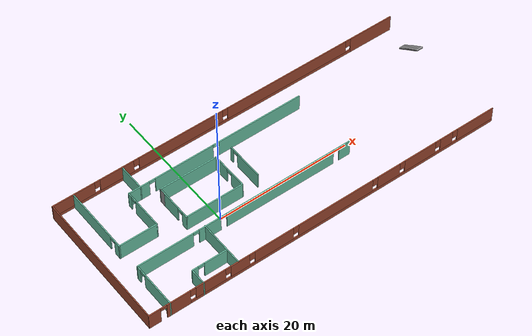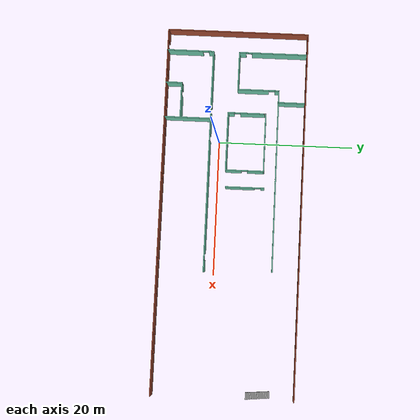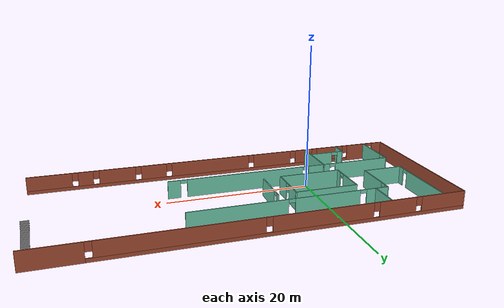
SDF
<sdf version="1.7">
 <model name="building">
  <pose>10.6748 2.21075 0 0 -0 0</pose>
  <link name="Stairs_0">
   <visual name="Stairs_0_Visual_0">
    <pose>26.501 6.70728 0.083333 0 -0 0</pose>
    <geometry><box><size>1 0.233333 0.166667</size></box></geometry>
    <material>
     <script><uri>file://media/materials/scripts/gazebo.material</uri><name>Gazebo/Grey</name></script>
     <ambient>0 0 0 1</ambient>
    </material>
    <meta><layer>0</layer></meta>
   </visual>
   <collision name="Stairs_0_Collision_0">
    <geometry><box><size>1 0.233333 0.166667</size></box></geometry>
    <pose>26.501 6.70728 0.083333 0 -0 0</pose>
   </collision>
   <visual name="Stairs_0_Visual_1">
    <pose>26.501 6.47394 0.25 0 -0 0</pose>
    <geometry><box><size>1 0.233333 0.166667</size></box></geometry>
    <material>
     <script><uri>file://media/materials/scripts/gazebo.material</uri><name>Gazebo/Grey</name></script>
     <ambient>0 0 0 1</ambient>
    </material>
    <meta><layer>0</layer></meta>
   </visual>
   <collision name="Stairs_0_Collision_1">
    <geometry><box><size>1 0.233333 0.166667</size></box></geometry>
    <pose>26.501 6.47394 0.25 0 -0 0</pose>
   </collision>
   <visual name="Stairs_0_Visual_2">
    <pose>26.501 6.24061 0.416667 0 -0 0</pose>
    <geometry><box><size>1 0.233333 0.166667</size></box></geometry>
    <material>
     <script><uri>file://media/materials/scripts/gazebo.material</uri><name>Gazebo/Grey</name></script>
     <ambient>0 0 0 1</ambient>
    </material>
    <meta><layer>0</layer></meta>
   </visual>
   <collision name="Stairs_0_Collision_2">
    <geometry><box><size>1 0.233333 0.166667</size></box></geometry>
    <pose>26.501 6.24061 0.416667 0 -0 0</pose>
   </collision>
   <visual name="Stairs_0_Visual_3">
    <pose>26.501 6.00728 0.583333 0 -0 0</pose>
    <geometry><box><size>1 0.233333 0.166667</size></box></geometry>
    <material>
     <script><uri>file://media/materials/scripts/gazebo.material</uri><name>Gazebo/Grey</name></script>
     <ambient>0 0 0 1</ambient>
    </material>
    <meta><layer>0</layer></meta>
   </visual>
   <collision name="Stairs_0_Collision_3">
    <geometry><box><size>1 0.233333 0.166667</size></box></geometry>
    <pose>26.501 6.00728 0.583333 0 -0 0</pose>
   </collision>
   <visual name="Stairs_0_Visual_4">
    <pose>26.501 5.77394 0.75 0 -0 0</pose>
    <geometry><box><size>1 0.233333 0.166667</size></box></geometry>
    <material>
     <script><uri>file://media/materials/scripts/gazebo.material</uri><name>Gazebo/Grey</name></script>
     <ambient>0 0 0 1</ambient>
    </material>
    <meta><layer>0</layer></meta>
   </visual>
   <collision name="Stairs_0_Collision_4">
    <geometry><box><size>1 0.233333 0.166667</size></box></geometry>
    <pose>26.501 5.77394 0.75 0 -0 0</pose>
   </collision>
   <visual name="Stairs_0_Visual_5">
    <pose>26.501 5.54061 0.916667 0 -0 0</pose>
    <geometry><box><size>1 0.233333 0.166667</size></box></geometry>
    <material>
     <script><uri>file://media/materials/scripts/gazebo.material</uri><name>Gazebo/Grey</name></script>
     <ambient>0 0 0 1</ambient>
    </material>
    <meta><layer>0</layer></meta>
   </visual>
   <collision name="Stairs_0_Collision_5">
    <geometry><box><size>1 0.233333 0.166667</size></box></geometry>
    <pose>26.501 5.54061 0.916667 0 -0 0</pose>
   </collision>
   <visual name="Stairs_0_Visual_6">
    <pose>26.501 5.30728 1.08333 0 -0 0</pose>
    <geometry><box><size>1 0.233333 0.166667</size></box></geometry>
    <material>
     <script><uri>file://media/materials/scripts/gazebo.material</uri><name>Gazebo/Grey</name></script>
     <ambient>0 0 0 1</ambient>
    </material>
    <meta><layer>0</layer></meta>
   </visual>
   <collision name="Stairs_0_Collision_6">
    <geometry><box><size>1 0.233333 0.166667</size></box></geometry>
    <pose>26.501 5.30728 1.08333 0 -0 0</pose>
   </collision>
   <visual name="Stairs_0_Visual_7">
    <pose>26.501 5.07395 1.25 0 -0 0</pose>
    <geometry><box><size>1 0.233333 0.166667</size></box></geometry>
    <material>
     <script><uri>file://media/materials/scripts/gazebo.material</uri><name>Gazebo/Grey</name></script>
     <ambient>0 0 0 1</ambient>
    </material>
    <meta><layer>0</layer></meta>
   </visual>
   <collision name="Stairs_0_Collision_7">
    <geometry><box><size>1 0.233333 0.166667</size></box></geometry>
    <pose>26.501 5.07395 1.25 0 -0 0</pose>
   </collision>
   <visual name="Stairs_0_Visual_8">
    <pose>26.501 4.84061 1.41667 0 -0 0</pose>
    <geometry><box><size>1 0.233333 0.166667</size></box></geometry>
    <material>
     <script><uri>file://media/materials/scripts/gazebo.material</uri><name>Gazebo/Grey</name></script>
     <ambient>0 0 0 1</ambient>
    </material>
    <meta><layer>0</layer></meta>
   </visual>
   <collision name="Stairs_0_Collision_8">
    <geometry><box><size>1 0.233333 0.166667</size></box></geometry>
    <pose>26.501 4.84061 1.41667 0 -0 0</pose>
   </collision>
   <visual name="Stairs_0_Visual_9">
    <pose>26.501 4.60728 1.58333 0 -0 0</pose>
    <geometry><box><size>1 0.233333 0.166667</size></box></geometry>
    <material>
     <script><uri>file://media/materials/scripts/gazebo.material</uri><name>Gazebo/Grey</name></script>
     <ambient>0 0 0 1</ambient>
    </material>
    <meta><layer>0</layer></meta>
   </visual>
   <collision name="Stairs_0_Collision_9">
    <geometry><box><size>1 0.233333 0.166667</size></box></geometry>
    <pose>26.501 4.60728 1.58333 0 -0 0</pose>
   </collision>
   <visual name="Stairs_0_Visual_10">
    <pose>26.501 4.37394 1.75 0 -0 0</pose>
    <geometry><box><size>1 0.233333 0.166667</size></box></geometry>
    <material>
     <script><uri>file://media/materials/scripts/gazebo.material</uri><name>Gazebo/Grey</name></script>
     <ambient>0 0 0 1</ambient>
    </material>
    <meta><layer>0</layer></meta>
   </visual>
   <collision name="Stairs_0_Collision_10">
    <geometry><box><size>1 0.233333 0.166667</size></box></geometry>
    <pose>26.501 4.37394 1.75 0 -0 0</pose>
   </collision>
   <visual name="Stairs_0_Visual_11">
    <pose>26.501 4.14061 1.91667 0 -0 0</pose>
    <geometry><box><size>1 0.233333 0.166667</size></box></geometry>
    <material>
     <script><uri>file://media/materials/scripts/gazebo.material</uri><name>Gazebo/Grey</name></script>
     <ambient>0 0 0 1</ambient>
    </material>
    <meta><layer>0</layer></meta>
   </visual>
   <collision name="Stairs_0_Collision_11">
    <geometry><box><size>1 0.233333 0.166667</size></box></geometry>
    <pose>26.501 4.14061 1.91667 0 -0 0</pose>
   </collision>
   <visual name="Stairs_0_Visual_12">
    <pose>26.501 3.90728 2.08333 0 -0 0</pose>
    <geometry><box><size>1 0.233333 0.166667</size></box></geometry>
    <material>
     <script><uri>file://media/materials/scripts/gazebo.material</uri><name>Gazebo/Grey</name></script>
     <ambient>0 0 0 1</ambient>
    </material>
    <meta><layer>0</layer></meta>
   </visual>
   <collision name="Stairs_0_Collision_12">
    <geometry><box><size>1 0.233333 0.166667</size></box></geometry>
    <pose>26.501 3.90728 2.08333 0 -0 0</pose>
   </collision>
   <visual name="Stairs_0_Visual_13">
    <pose>26.501 3.67394 2.25 0 -0 0</pose>
    <geometry><box><size>1 0.233333 0.166667</size></box></geometry>
    <material>
     <script><uri>file://media/materials/scripts/gazebo.material</uri><name>Gazebo/Grey</name></script>
     <ambient>0 0 0 1</ambient>
    </material>
    <meta><layer>0</layer></meta>
   </visual>
   <collision name="Stairs_0_Collision_13">
    <geometry><box><size>1 0.233333 0.166667</size></box></geometry>
    <pose>26.501 3.67394 2.25 0 -0 0</pose>
   </collision>
   <visual name="Stairs_0_Visual_14">
    <pose>26.501 3.44061 2.41667 0 -0 0</pose>
    <geometry><box><size>1 0.233333 0.166667</size></box></geometry>
    <material>
     <script><uri>file://media/materials/scripts/gazebo.material</uri><name>Gazebo/Grey</name></script>
     <ambient>0 0 0 1</ambient>
    </material>
    <meta><layer>0</layer></meta>
   </visual>
   <collision name="Stairs_0_Collision_14">
    <geometry><box><size>1 0.233333 0.166667</size></box></geometry>
    <pose>26.501 3.44061 2.41667 0 -0 0</pose>
   </collision>
  </link>
  <link name="Wall_1">
   <collision name="Wall_1_Collision">
    <geometry><box><size>20.9643 0.15 2.5</size></box></geometry>
    <pose>0 0 1.25 0 -0 0</pose>
   </collision>
   <visual name="Wall_1_Visual">
    <pose>0 0 1.25 0 -0 0</pose>
    <geometry><box><size>20.9643 0.15 2.5</size></box></geometry>
    <material>
     <script><uri>file://media/materials/scripts/gazebo.material</uri><name>Gazebo/Bricks</name></script>
     <ambient>1 1 1 1</ambient>
    </material>
    <meta><layer>0</layer></meta>
   </visual>
   <pose>-27.1424 0.06125 0 0 -0 -1.5708</pose>
  </link>
  <link name="Wall_17">
   <pose>-24.0451 -6.99311 0 0 -0 1.5708</pose>
   <visual name="Wall_17_Visual_0">
    <pose>-0.841784 0 1.25 0 -0 0</pose>
    <geometry><box><size>5.31643 0.15 2.5</size></box></geometry>
    <material>
     <script><uri>file://media/materials/scripts/gazebo.material</uri><name>Gazebo/Grey</name></script>
     <ambient>0.435294 0.796078 0.67451 1</ambient>
    </material>
    <meta><layer>0</layer></meta>
   </visual>
   <collision name="Wall_17_Collision_0">
    <geometry><box><size>5.31643 0.15 2.5</size></box></geometry>
    <pose>-0.841784 0 1.25 0 -0 0</pose>
   </collision>
   <visual name="Wall_17_Visual_1">
    <pose>3.10822 0 1.25 0 -0 0</pose>
    <geometry><box><size>0.783567 0.15 2.5</size></box></geometry>
    <material>
     <script><uri>file://media/materials/scripts/gazebo.material</uri><name>Gazebo/Grey</name></script>
     <ambient>0.435294 0.796078 0.67451 1</ambient>
    </material>
    <meta><layer>0</layer></meta>
   </visual>
   <collision name="Wall_17_Collision_1">
    <geometry><box><size>0.783567 0.15 2.5</size></box></geometry>
    <pose>3.10822 0 1.25 0 -0 0</pose>
   </collision>
   <visual name="Wall_17_Visual_2">
    <pose>2.26643 0 2.25 0 -0 0</pose>
    <geometry><box><size>0.9 0.15 0.5</size></box></geometry>
    <material>
     <script><uri>file://media/materials/scripts/gazebo.material</uri><name>Gazebo/Grey</name></script>
     <ambient>0.435294 0.796078 0.67451 1</ambient>
    </material>
    <meta><layer>0</layer></meta>
   </visual>
   <collision name="Wall_17_Collision_2">
    <geometry><box><size>0.9 0.15 0.5</size></box></geometry>
    <pose>2.26643 0 2.25 0 -0 0</pose>
   </collision>
  </link>
  <link name="Wall_19">
   <pose>-24.0451 5.37983 0 0 -0 1.5708</pose>
   <visual name="Wall_19_Visual_0">
    <pose>-4.60412 0 1.25 0 -0 0</pose>
    <geometry><box><size>1.04177 0.15 2.5</size></box></geometry>
    <material>
     <script><uri>file://media/materials/scripts/gazebo.material</uri><name>Gazebo/Grey</name></script>
     <ambient>0.435294 0.796078 0.67451 1</ambient>
    </material>
    <meta><layer>0</layer></meta>
   </visual>
   <collision name="Wall_19_Collision_0">
    <geometry><box><size>1.04177 0.15 2.5</size></box></geometry>
    <pose>-4.60412 0 1.25 0 -0 0</pose>
   </collision>
   <visual name="Wall_19_Visual_1">
    <pose>0.970883 0 1.25 0 -0 0</pose>
    <geometry><box><size>8.30823 0.15 2.5</size></box></geometry>
    <material>
     <script><uri>file://media/materials/scripts/gazebo.material</uri><name>Gazebo/Grey</name></script>
     <ambient>0.435294 0.796078 0.67451 1</ambient>
    </material>
    <meta><layer>0</layer></meta>
   </visual>
   <collision name="Wall_19_Collision_1">
    <geometry><box><size>8.30823 0.15 2.5</size></box></geometry>
    <pose>0.970883 0 1.25 0 -0 0</pose>
   </collision>
   <visual name="Wall_19_Visual_2">
    <pose>-3.63323 0 2.25 0 -0 0</pose>
    <geometry><box><size>0.9 0.15 0.5</size></box></geometry>
    <material>
     <script><uri>file://media/materials/scripts/gazebo.material</uri><name>Gazebo/Grey</name></script>
     <ambient>0.435294 0.796078 0.67451 1</ambient>
    </material>
    <meta><layer>0</layer></meta>
   </visual>
   <collision name="Wall_19_Collision_2">
    <geometry><box><size>0.9 0.15 0.5</size></box></geometry>
    <pose>-3.63323 0 2.25 0 -0 0</pose>
   </collision>
  </link>
  <link name="Wall_2">
   <pose>-0.030827 -10.4379 0 0 -0 -0.001122</pose>
   <visual name="Wall_2_Visual_0">
    <pose>-26.3076 0 1.25 0 -0 0</pose>
    <geometry><box><size>1.75806 0.15 2.5</size></box></geometry>
    <material>
     <script><uri>file://media/materials/scripts/gazebo.material</uri><name>Gazebo/Bricks</name></script>
     <ambient>1 1 1 1</ambient>
    </material>
    <meta><layer>0</layer></meta>
   </visual>
   <collision name="Wall_2_Collision_0">
    <geometry><box><size>1.75806 0.15 2.5</size></box></geometry>
    <pose>-26.3076 0 1.25 0 -0 0</pose>
   </collision>
   <visual name="Wall_2_Visual_1">
    <pose>-22.8085 0 1.25 0 -0 0</pose>
    <geometry><box><size>3.44002 0.15 2.5</size></box></geometry>
    <material>
     <script><uri>file://media/materials/scripts/gazebo.material</uri><name>Gazebo/Bricks</name></script>
     <ambient>1 1 1 1</ambient>
    </material>
    <meta><layer>0</layer></meta>
   </visual>
   <collision name="Wall_2_Collision_1">
    <geometry><box><size>3.44002 0.15 2.5</size></box></geometry>
    <pose>-22.8085 0 1.25 0 -0 0</pose>
   </collision>
   <visual name="Wall_2_Visual_2">
    <pose>3.04904 0 0.25 0 -0 0</pose>
    <geometry><box><size>48.2751 0.15 0.5</size></box></geometry>
    <material>
     <script><uri>file://media/materials/scripts/gazebo.material</uri><name>Gazebo/Bricks</name></script>
     <ambient>1 1 1 1</ambient>
    </material>
    <meta><layer>0</layer></meta>
   </visual>
   <collision name="Wall_2_Collision_2">
    <geometry><box><size>48.2751 0.15 0.5</size></box></geometry>
    <pose>3.04904 0 0.25 0 -0 0</pose>
   </collision>
   <visual name="Wall_2_Visual_3">
    <pose>-18.0663 0 1.5 0 -0 0</pose>
    <geometry><box><size>4.44444 0.15 2</size></box></geometry>
    <material>
     <script><uri>file://media/materials/scripts/gazebo.material</uri><name>Gazebo/Bricks</name></script>
     <ambient>1 1 1 1</ambient>
    </material>
    <meta><layer>0</layer></meta>
   </visual>
   <collision name="Wall_2_Collision_3">
    <geometry><box><size>4.44444 0.15 2</size></box></geometry>
    <pose>-18.0663 0 1.5 0 -0 0</pose>
   </collision>
   <visual name="Wall_2_Visual_4">
    <pose>-13.6333 0 1.5 0 -0 0</pose>
    <geometry><box><size>2.8216 0.15 2</size></box></geometry>
    <material>
     <script><uri>file://media/materials/scripts/gazebo.material</uri><name>Gazebo/Bricks</name></script>
     <ambient>1 1 1 1</ambient>
    </material>
    <meta><layer>0</layer></meta>
   </visual>
   <collision name="Wall_2_Collision_4">
    <geometry><box><size>2.8216 0.15 2</size></box></geometry>
    <pose>-13.6333 0 1.5 0 -0 0</pose>
   </collision>
   <visual name="Wall_2_Visual_5">
    <pose>-8.44766 0 1.5 0 -0 0</pose>
    <geometry><box><size>5.94963 0.15 2</size></box></geometry>
    <material>
     <script><uri>file://media/materials/scripts/gazebo.material</uri><name>Gazebo/Bricks</name></script>
     <ambient>1 1 1 1</ambient>
    </material>
    <meta><layer>0</layer></meta>
   </visual>
   <collision name="Wall_2_Collision_5">
    <geometry><box><size>5.94963 0.15 2</size></box></geometry>
    <pose>-8.44766 0 1.5 0 -0 0</pose>
   </collision>
   <visual name="Wall_2_Visual_6">
    <pose>1.21919 0 1.5 0 -0 0</pose>
    <geometry><box><size>11.7841 0.15 2</size></box></geometry>
    <material>
     <script><uri>file://media/materials/scripts/gazebo.material</uri><name>Gazebo/Bricks</name></script>
     <ambient>1 1 1 1</ambient>
    </material>
    <meta><layer>0</layer></meta>
   </visual>
   <collision name="Wall_2_Collision_6">
    <geometry><box><size>11.7841 0.15 2</size></box></geometry>
    <pose>1.21919 0 1.5 0 -0 0</pose>
   </collision>
   <visual name="Wall_2_Visual_7">
    <pose>9.73615 0 1.5 0 -0 0</pose>
    <geometry><box><size>3.64987 0.15 2</size></box></geometry>
    <material>
     <script><uri>file://media/materials/scripts/gazebo.material</uri><name>Gazebo/Bricks</name></script>
     <ambient>1 1 1 1</ambient>
    </material>
    <meta><layer>0</layer></meta>
   </visual>
   <collision name="Wall_2_Collision_7">
    <geometry><box><size>3.64987 0.15 2</size></box></geometry>
    <pose>9.73615 0 1.5 0 -0 0</pose>
   </collision>
   <visual name="Wall_2_Visual_8">
    <pose>14.9144 0 1.5 0 -0 0</pose>
    <geometry><box><size>5.10667 0.15 2</size></box></geometry>
    <material>
     <script><uri>file://media/materials/scripts/gazebo.material</uri><name>Gazebo/Bricks</name></script>
     <ambient>1 1 1 1</ambient>
    </material>
    <meta><layer>0</layer></meta>
   </visual>
   <collision name="Wall_2_Collision_8">
    <geometry><box><size>5.10667 0.15 2</size></box></geometry>
    <pose>14.9144 0 1.5 0 -0 0</pose>
   </collision>
   <visual name="Wall_2_Visual_9">
    <pose>19.2961 0 1.5 0 -0 0</pose>
    <geometry><box><size>2.05672 0.15 2</size></box></geometry>
    <material>
     <script><uri>file://media/materials/scripts/gazebo.material</uri><name>Gazebo/Bricks</name></script>
     <ambient>1 1 1 1</ambient>
    </material>
    <meta><layer>0</layer></meta>
   </visual>
   <collision name="Wall_2_Collision_9">
    <geometry><box><size>2.05672 0.15 2</size></box></geometry>
    <pose>19.2961 0 1.5 0 -0 0</pose>
   </collision>
   <visual name="Wall_2_Visual_10">
    <pose>24.1555 0 1.5 0 -0 0</pose>
    <geometry><box><size>6.06212 0.15 2</size></box></geometry>
    <material>
     <script><uri>file://media/materials/scripts/gazebo.material</uri><name>Gazebo/Bricks</name></script>
     <ambient>1 1 1 1</ambient>
    </material>
    <meta><layer>0</layer></meta>
   </visual>
   <collision name="Wall_2_Collision_10">
    <geometry><box><size>6.06212 0.15 2</size></box></geometry>
    <pose>24.1555 0 1.5 0 -0 0</pose>
   </collision>
   <visual name="Wall_2_Visual_11">
    <pose>-20.6885 0 1.9 0 -0 0</pose>
    <geometry><box><size>0.8 0.15 1.2</size></box></geometry>
    <material>
     <script><uri>file://media/materials/scripts/gazebo.material</uri><name>Gazebo/Bricks</name></script>
     <ambient>1 1 1 1</ambient>
    </material>
    <meta><layer>0</layer></meta>
   </visual>
   <collision name="Wall_2_Collision_11">
    <geometry><box><size>0.8 0.15 1.2</size></box></geometry>
    <pose>-20.6885 0 1.9 0 -0 0</pose>
   </collision>
   <visual name="Wall_2_Visual_12">
    <pose>-15.4441 0 1.9 0 -0 0</pose>
    <geometry><box><size>0.8 0.15 1.2</size></box></geometry>
    <material>
     <script><uri>file://media/materials/scripts/gazebo.material</uri><name>Gazebo/Bricks</name></script>
     <ambient>1 1 1 1</ambient>
    </material>
    <meta><layer>0</layer></meta>
   </visual>
   <collision name="Wall_2_Collision_12">
    <geometry><box><size>0.8 0.15 1.2</size></box></geometry>
    <pose>-15.4441 0 1.9 0 -0 0</pose>
   </collision>
   <visual name="Wall_2_Visual_13">
    <pose>-11.8225 0 1.9 0 -0 0</pose>
    <geometry><box><size>0.8 0.15 1.2</size></box></geometry>
    <material>
     <script><uri>file://media/materials/scripts/gazebo.material</uri><name>Gazebo/Bricks</name></script>
     <ambient>1 1 1 1</ambient>
    </material>
    <meta><layer>0</layer></meta>
   </visual>
   <collision name="Wall_2_Collision_13">
    <geometry><box><size>0.8 0.15 1.2</size></box></geometry>
    <pose>-11.8225 0 1.9 0 -0 0</pose>
   </collision>
   <visual name="Wall_2_Visual_14">
    <pose>-5.07284 0 1.9 0 -0 0</pose>
    <geometry><box><size>0.8 0.15 1.2</size></box></geometry>
    <material>
     <script><uri>file://media/materials/scripts/gazebo.material</uri><name>Gazebo/Bricks</name></script>
     <ambient>1 1 1 1</ambient>
    </material>
    <meta><layer>0</layer></meta>
   </visual>
   <collision name="Wall_2_Collision_14">
    <geometry><box><size>0.8 0.15 1.2</size></box></geometry>
    <pose>-5.07284 0 1.9 0 -0 0</pose>
   </collision>
   <visual name="Wall_2_Visual_15">
    <pose>7.51122 0 1.9 0 -0 0</pose>
    <geometry><box><size>0.8 0.15 1.2</size></box></geometry>
    <material>
     <script><uri>file://media/materials/scripts/gazebo.material</uri><name>Gazebo/Bricks</name></script>
     <ambient>1 1 1 1</ambient>
    </material>
    <meta><layer>0</layer></meta>
   </visual>
   <collision name="Wall_2_Collision_15">
    <geometry><box><size>0.8 0.15 1.2</size></box></geometry>
    <pose>7.51122 0 1.9 0 -0 0</pose>
   </collision>
   <visual name="Wall_2_Visual_16">
    <pose>11.9611 0 1.9 0 -0 0</pose>
    <geometry><box><size>0.8 0.15 1.2</size></box></geometry>
    <material>
     <script><uri>file://media/materials/scripts/gazebo.material</uri><name>Gazebo/Bricks</name></script>
     <ambient>1 1 1 1</ambient>
    </material>
    <meta><layer>0</layer></meta>
   </visual>
   <collision name="Wall_2_Collision_16">
    <geometry><box><size>0.8 0.15 1.2</size></box></geometry>
    <pose>11.9611 0 1.9 0 -0 0</pose>
   </collision>
   <visual name="Wall_2_Visual_17">
    <pose>17.8678 0 1.9 0 -0 0</pose>
    <geometry><box><size>0.8 0.15 1.2</size></box></geometry>
    <material>
     <script><uri>file://media/materials/scripts/gazebo.material</uri><name>Gazebo/Bricks</name></script>
     <ambient>1 1 1 1</ambient>
    </material>
    <meta><layer>0</layer></meta>
   </visual>
   <collision name="Wall_2_Collision_17">
    <geometry><box><size>0.8 0.15 1.2</size></box></geometry>
    <pose>17.8678 0 1.9 0 -0 0</pose>
   </collision>
   <visual name="Wall_2_Visual_18">
    <pose>20.7245 0 1.9 0 -0 0</pose>
    <geometry><box><size>0.8 0.15 1.2</size></box></geometry>
    <material>
     <script><uri>file://media/materials/scripts/gazebo.material</uri><name>Gazebo/Bricks</name></script>
     <ambient>1 1 1 1</ambient>
    </material>
    <meta><layer>0</layer></meta>
   </visual>
   <collision name="Wall_2_Collision_18">
    <geometry><box><size>0.8 0.15 1.2</size></box></geometry>
    <pose>20.7245 0 1.9 0 -0 0</pose>
   </collision>
   <visual name="Wall_2_Visual_19">
    <pose>-24.9785 0 2.25 0 -0 0</pose>
    <geometry><box><size>0.9 0.15 0.5</size></box></geometry>
    <material>
     <script><uri>file://media/materials/scripts/gazebo.material</uri><name>Gazebo/Bricks</name></script>
     <ambient>1 1 1 1</ambient>
    </material>
    <meta><layer>0</layer></meta>
   </visual>
   <collision name="Wall_2_Collision_19">
    <geometry><box><size>0.9 0.15 0.5</size></box></geometry>
    <pose>-24.9785 0 2.25 0 -0 0</pose>
   </collision>
  </link>
  <link name="Wall_22">
   <pose>-7.62009 -3.56811 0 0 -0 0</pose>
   <visual name="Wall_22_Visual_0">
    <pose>-12.3198 0 1.25 0 -0 0</pose>
    <geometry><box><size>8.36047 0.15 2.5</size></box></geometry>
    <material>
     <script><uri>file://media/materials/scripts/gazebo.material</uri><name>Gazebo/Grey</name></script>
     <ambient>0.435294 0.796078 0.67451 1</ambient>
    </material>
    <meta><layer>0</layer></meta>
   </visual>
   <collision name="Wall_22_Collision_0">
    <geometry><box><size>8.36047 0.15 2.5</size></box></geometry>
    <pose>-12.3198 0 1.25 0 -0 0</pose>
   </collision>
   <visual name="Wall_22_Visual_1">
    <pose>-5.58622 0 1.25 0 -0 0</pose>
    <geometry><box><size>3.3066 0.15 2.5</size></box></geometry>
    <material>
     <script><uri>file://media/materials/scripts/gazebo.material</uri><name>Gazebo/Grey</name></script>
     <ambient>0.435294 0.796078 0.67451 1</ambient>
    </material>
    <meta><layer>0</layer></meta>
   </visual>
   <collision name="Wall_22_Collision_1">
    <geometry><box><size>3.3066 0.15 2.5</size></box></geometry>
    <pose>-5.58622 0 1.25 0 -0 0</pose>
   </collision>
   <visual name="Wall_22_Visual_2">
    <pose>5.40154 0 1.25 0 -0 0</pose>
    <geometry><box><size>16.8689 0.15 2.5</size></box></geometry>
    <material>
     <script><uri>file://media/materials/scripts/gazebo.material</uri><name>Gazebo/Grey</name></script>
     <ambient>0.435294 0.796078 0.67451 1</ambient>
    </material>
    <meta><layer>0</layer></meta>
   </visual>
   <collision name="Wall_22_Collision_2">
    <geometry><box><size>16.8689 0.15 2.5</size></box></geometry>
    <pose>5.40154 0 1.25 0 -0 0</pose>
   </collision>
   <visual name="Wall_22_Visual_3">
    <pose>15.618 0 1.25 0 -0 0</pose>
    <geometry><box><size>1.76399 0.15 2.5</size></box></geometry>
    <material>
     <script><uri>file://media/materials/scripts/gazebo.material</uri><name>Gazebo/Grey</name></script>
     <ambient>0.435294 0.796078 0.67451 1</ambient>
    </material>
    <meta><layer>0</layer></meta>
   </visual>
   <collision name="Wall_22_Collision_3">
    <geometry><box><size>1.76399 0.15 2.5</size></box></geometry>
    <pose>15.618 0 1.25 0 -0 0</pose>
   </collision>
   <visual name="Wall_22_Visual_4">
    <pose>-7.68952 0 2.25 0 -0 0</pose>
    <geometry><box><size>0.9 0.15 0.5</size></box></geometry>
    <material>
     <script><uri>file://media/materials/scripts/gazebo.material</uri><name>Gazebo/Grey</name></script>
     <ambient>0.435294 0.796078 0.67451 1</ambient>
    </material>
    <meta><layer>0</layer></meta>
   </visual>
   <collision name="Wall_22_Collision_4">
    <geometry><box><size>0.9 0.15 0.5</size></box></geometry>
    <pose>-7.68952 0 2.25 0 -0 0</pose>
   </collision>
   <visual name="Wall_22_Visual_5">
    <pose>-3.48292 0 2.25 0 -0 0</pose>
    <geometry><box><size>0.9 0.15 0.5</size></box></geometry>
    <material>
     <script><uri>file://media/materials/scripts/gazebo.material</uri><name>Gazebo/Grey</name></script>
     <ambient>0.435294 0.796078 0.67451 1</ambient>
    </material>
    <meta><layer>0</layer></meta>
   </visual>
   <collision name="Wall_22_Collision_5">
    <geometry><box><size>0.9 0.15 0.5</size></box></geometry>
    <pose>-3.48292 0 2.25 0 -0 0</pose>
   </collision>
   <visual name="Wall_22_Visual_6">
    <pose>14.286 0 2.25 0 -0 0</pose>
    <geometry><box><size>0.9 0.15 0.5</size></box></geometry>
    <material>
     <script><uri>file://media/materials/scripts/gazebo.material</uri><name>Gazebo/Grey</name></script>
     <ambient>0.435294 0.796078 0.67451 1</ambient>
    </material>
    <meta><layer>0</layer></meta>
   </visual>
   <collision name="Wall_22_Collision_6">
    <geometry><box><size>0.9 0.15 0.5</size></box></geometry>
    <pose>14.286 0 2.25 0 -0 0</pose>
   </collision>
  </link>
  <link name="Wall_25">
   <collision name="Wall_25_Collision">
    <geometry><box><size>7 0.15 2.5</size></box></geometry>
    <pose>0 0 1.25 0 -0 0</pose>
   </collision>
   <visual name="Wall_25_Visual">
    <pose>0 0 1.25 0 -0 0</pose>
    <geometry><box><size>7 0.15 2.5</size></box></geometry>
    <material>
     <script><uri>file://media/materials/scripts/gazebo.material</uri><name>Gazebo/Grey</name></script>
     <ambient>0.435294 0.796078 0.67451 1</ambient>
    </material>
    <meta><layer>0</layer></meta>
   </visual>
   <pose>-13.9058 -6.92493 0 0 -0 -1.5708</pose>
  </link>
  <link name="Wall_27">
   <collision name="Wall_27_Collision">
    <geometry><box><size>5.75 0.15 2.5</size></box></geometry>
    <pose>0 0 1.25 0 -0 0</pose>
   </collision>
   <visual name="Wall_27_Visual">
    <pose>0 0 1.25 0 -0 0</pose>
    <geometry><box><size>5.75 0.15 2.5</size></box></geometry>
    <material>
     <script><uri>file://media/materials/scripts/gazebo.material</uri><name>Gazebo/Grey</name></script>
     <ambient>0.435294 0.796078 0.67451 1</ambient>
    </material>
    <meta><layer>0</layer></meta>
   </visual>
   <pose>-21.2451 0.32983 0 0 -0 0</pose>
  </link>
  <link name="Wall_28">
   <pose>-18.4451 3.37983 0 0 -0 1.5708</pose>
   <visual name="Wall_28_Visual_0">
    <pose>-0.805712 0 1.25 0 -0 0</pose>
    <geometry><box><size>4.63858 0.15 2.5</size></box></geometry>
    <material>
     <script><uri>file://media/materials/scripts/gazebo.material</uri><name>Gazebo/Grey</name></script>
     <ambient>0.435294 0.796078 0.67451 1</ambient>
    </material>
    <meta><layer>0</layer></meta>
   </visual>
   <collision name="Wall_28_Collision_0">
    <geometry><box><size>4.63858 0.15 2.5</size></box></geometry>
    <pose>-0.805712 0 1.25 0 -0 0</pose>
   </collision>
   <visual name="Wall_28_Visual_1">
    <pose>2.76929 0 1.25 0 -0 0</pose>
    <geometry><box><size>0.711425 0.15 2.5</size></box></geometry>
    <material>
     <script><uri>file://media/materials/scripts/gazebo.material</uri><name>Gazebo/Grey</name></script>
     <ambient>0.435294 0.796078 0.67451 1</ambient>
    </material>
    <meta><layer>0</layer></meta>
   </visual>
   <collision name="Wall_28_Collision_1">
    <geometry><box><size>0.711425 0.15 2.5</size></box></geometry>
    <pose>2.76929 0 1.25 0 -0 0</pose>
   </collision>
   <visual name="Wall_28_Visual_2">
    <pose>1.96358 0 2.25 0 -0 0</pose>
    <geometry><box><size>0.9 0.15 0.5</size></box></geometry>
    <material>
     <script><uri>file://media/materials/scripts/gazebo.material</uri><name>Gazebo/Grey</name></script>
     <ambient>0.435294 0.796078 0.67451 1</ambient>
    </material>
    <meta><layer>0</layer></meta>
   </visual>
   <collision name="Wall_28_Collision_2">
    <geometry><box><size>0.9 0.15 0.5</size></box></geometry>
    <pose>1.96358 0 2.25 0 -0 0</pose>
   </collision>
  </link>
  <link name="Wall_29">
   <pose>-4.99334 6.45658 0 0 -0 0.001989</pose>
   <visual name="Wall_29_Visual_0">
    <pose>-11.9411 0 1.25 0 -0 0</pose>
    <geometry><box><size>3.17132 0.15 2.5</size></box></geometry>
    <material>
     <script><uri>file://media/materials/scripts/gazebo.material</uri><name>Gazebo/Grey</name></script>
     <ambient>0.435294 0.796078 0.67451 1</ambient>
    </material>
    <meta><layer>0</layer></meta>
   </visual>
   <collision name="Wall_29_Collision_0">
    <geometry><box><size>3.17132 0.15 2.5</size></box></geometry>
    <pose>-11.9411 0 1.25 0 -0 0</pose>
   </collision>
   <visual name="Wall_29_Visual_1">
    <pose>-4.94991 0 1.25 0 -0 0</pose>
    <geometry><box><size>9.01109 0.15 2.5</size></box></geometry>
    <material>
     <script><uri>file://media/materials/scripts/gazebo.material</uri><name>Gazebo/Grey</name></script>
     <ambient>0.435294 0.796078 0.67451 1</ambient>
    </material>
    <meta><layer>0</layer></meta>
   </visual>
   <collision name="Wall_29_Collision_1">
    <geometry><box><size>9.01109 0.15 2.5</size></box></geometry>
    <pose>-4.94991 0 1.25 0 -0 0</pose>
   </collision>
   <visual name="Wall_29_Visual_2">
    <pose>6.99121 0 1.25 0 -0 0</pose>
    <geometry><box><size>13.0711 0.15 2.5</size></box></geometry>
    <material>
     <script><uri>file://media/materials/scripts/gazebo.material</uri><name>Gazebo/Grey</name></script>
     <ambient>0.435294 0.796078 0.67451 1</ambient>
    </material>
    <meta><layer>0</layer></meta>
   </visual>
   <collision name="Wall_29_Collision_2">
    <geometry><box><size>13.0711 0.15 2.5</size></box></geometry>
    <pose>6.99121 0 1.25 0 -0 0</pose>
   </collision>
   <visual name="Wall_29_Visual_3">
    <pose>-9.90545 0 2.25 0 -0 0</pose>
    <geometry><box><size>0.9 0.15 0.5</size></box></geometry>
    <material>
     <script><uri>file://media/materials/scripts/gazebo.material</uri><name>Gazebo/Grey</name></script>
     <ambient>0.435294 0.796078 0.67451 1</ambient>
    </material>
    <meta><layer>0</layer></meta>
   </visual>
   <collision name="Wall_29_Collision_3">
    <geometry><box><size>0.9 0.15 0.5</size></box></geometry>
    <pose>-9.90545 0 2.25 0 -0 0</pose>
   </collision>
   <visual name="Wall_29_Visual_4">
    <pose>0.005638 0 2.25 0 -0 0</pose>
    <geometry><box><size>0.9 0.15 0.5</size></box></geometry>
    <material>
     <script><uri>file://media/materials/scripts/gazebo.material</uri><name>Gazebo/Grey</name></script>
     <ambient>0.435294 0.796078 0.67451 1</ambient>
    </material>
    <meta><layer>0</layer></meta>
   </visual>
   <collision name="Wall_29_Collision_4">
    <geometry><box><size>0.9 0.15 0.5</size></box></geometry>
    <pose>0.005638 0 2.25 0 -0 0</pose>
   </collision>
  </link>
  <link name="Wall_35">
   <pose>-14.8782 1.69322 0 0 -0 -1.5708</pose>
   <visual name="Wall_35_Visual_0">
    <pose>-0.940755 0 1.25 0 -0 0</pose>
    <geometry><box><size>3.61849 0.15 2.5</size></box></geometry>
    <material>
     <script><uri>file://media/materials/scripts/gazebo.material</uri><name>Gazebo/Grey</name></script>
     <ambient>0.435294 0.796078 0.67451 1</ambient>
    </material>
    <meta><layer>0</layer></meta>
   </visual>
   <collision name="Wall_35_Collision_0">
    <geometry><box><size>3.61849 0.15 2.5</size></box></geometry>
    <pose>-0.940755 0 1.25 0 -0 0</pose>
   </collision>
   <visual name="Wall_35_Visual_1">
    <pose>2.25924 0 1.25 0 -0 0</pose>
    <geometry><box><size>0.98151 0.15 2.5</size></box></geometry>
    <material>
     <script><uri>file://media/materials/scripts/gazebo.material</uri><name>Gazebo/Grey</name></script>
     <ambient>0.435294 0.796078 0.67451 1</ambient>
    </material>
    <meta><layer>0</layer></meta>
   </visual>
   <collision name="Wall_35_Collision_1">
    <geometry><box><size>0.98151 0.15 2.5</size></box></geometry>
    <pose>2.25924 0 1.25 0 -0 0</pose>
   </collision>
   <visual name="Wall_35_Visual_2">
    <pose>1.31849 0 2.25 0 -0 0</pose>
    <geometry><box><size>0.9 0.15 0.5</size></box></geometry>
    <material>
     <script><uri>file://media/materials/scripts/gazebo.material</uri><name>Gazebo/Grey</name></script>
     <ambient>0.435294 0.796078 0.67451 1</ambient>
    </material>
    <meta><layer>0</layer></meta>
   </visual>
   <collision name="Wall_35_Collision_2">
    <geometry><box><size>0.9 0.15 0.5</size></box></geometry>
    <pose>1.31849 0 2.25 0 -0 0</pose>
   </collision>
  </link>
  <link name="Wall_36">
   <collision name="Wall_36_Collision">
    <geometry><box><size>8.75 0.15 2.5</size></box></geometry>
    <pose>0 0 1.25 0 -0 0</pose>
   </collision>
   <visual name="Wall_36_Visual">
    <pose>0 0 1.25 0 -0 0</pose>
    <geometry><box><size>8.75 0.15 2.5</size></box></geometry>
    <material>
     <script><uri>file://media/materials/scripts/gazebo.material</uri><name>Gazebo/Grey</name></script>
     <ambient>0.435294 0.796078 0.67451 1</ambient>
    </material>
    <meta><layer>0</layer></meta>
   </visual>
   <pose>-10.5782 -0.98178 0 0 -0 0</pose>
  </link>
  <link name="Wall_37">
   <pose>-6.2782 1.81822 0 0 -0 1.5708</pose>
   <visual name="Wall_37_Visual_0">
    <pose>-1.69264 0 1.25 0 -0 0</pose>
    <geometry><box><size>2.36472 0.15 2.5</size></box></geometry>
    <material>
     <script><uri>file://media/materials/scripts/gazebo.material</uri><name>Gazebo/Grey</name></script>
     <ambient>0.435294 0.796078 0.67451 1</ambient>
    </material>
    <meta><layer>0</layer></meta>
   </visual>
   <collision name="Wall_37_Collision_0">
    <geometry><box><size>2.36472 0.15 2.5</size></box></geometry>
    <pose>-1.69264 0 1.25 0 -0 0</pose>
   </collision>
   <visual name="Wall_37_Visual_1">
    <pose>1.63236 0 1.25 0 -0 0</pose>
    <geometry><box><size>2.48528 0.15 2.5</size></box></geometry>
    <material>
     <script><uri>file://media/materials/scripts/gazebo.material</uri><name>Gazebo/Grey</name></script>
     <ambient>0.435294 0.796078 0.67451 1</ambient>
    </material>
    <meta><layer>0</layer></meta>
   </visual>
   <collision name="Wall_37_Collision_1">
    <geometry><box><size>2.48528 0.15 2.5</size></box></geometry>
    <pose>1.63236 0 1.25 0 -0 0</pose>
   </collision>
   <visual name="Wall_37_Visual_2">
    <pose>-0.06028 0 2.25 0 -0 0</pose>
    <geometry><box><size>0.9 0.15 0.5</size></box></geometry>
    <material>
     <script><uri>file://media/materials/scripts/gazebo.material</uri><name>Gazebo/Grey</name></script>
     <ambient>0.435294 0.796078 0.67451 1</ambient>
    </material>
    <meta><layer>0</layer></meta>
   </visual>
   <collision name="Wall_37_Collision_2">
    <geometry><box><size>0.9 0.15 0.5</size></box></geometry>
    <pose>-0.06028 0 2.25 0 -0 0</pose>
   </collision>
  </link>
  <link name="Wall_38">
   <collision name="Wall_38_Collision">
    <geometry><box><size>8.75 0.15 2.5</size></box></geometry>
    <pose>0 0 1.25 0 -0 0</pose>
   </collision>
   <visual name="Wall_38_Visual">
    <pose>0 0 1.25 0 -0 0</pose>
    <geometry><box><size>8.75 0.15 2.5</size></box></geometry>
    <material>
     <script><uri>file://media/materials/scripts/gazebo.material</uri><name>Gazebo/Grey</name></script>
     <ambient>0.435294 0.796078 0.67451 1</ambient>
    </material>
    <meta><layer>0</layer></meta>
   </visual>
   <pose>-10.5782 4.61822 0 0 -0 3.14159</pose>
  </link>
  <link name="Wall_39">
   <collision name="Wall_39_Collision">
    <geometry><box><size>1 0.15 2.5</size></box></geometry>
    <pose>0 0 1.25 0 -0 0</pose>
   </collision>
   <visual name="Wall_39_Visual">
    <pose>0 0 1.25 0 -0 0</pose>
    <geometry><box><size>1 0.15 2.5</size></box></geometry>
    <material>
     <script><uri>file://media/materials/scripts/gazebo.material</uri><name>Gazebo/Grey</name></script>
     <ambient>1 1 1 1</ambient>
    </material>
    <meta><layer>0</layer></meta>
   </visual>
   <pose>-14.8782 4.19322 0 0 -0 -1.5708</pose>
  </link>
  <link name="Wall_4">
   <pose>-6.2e-05 10.438 0 0 -0 3.14047</pose>
   <visual name="Wall_4_Visual_0">
    <pose>-23.7297 0 1.25 0 -0 0</pose>
    <geometry><box><size>6.97541 0.15 2.5</size></box></geometry>
    <material>
     <script><uri>file://media/materials/scripts/gazebo.material</uri><name>Gazebo/Bricks</name></script>
     <ambient>1 1 1 1</ambient>
    </material>
    <meta><layer>0</layer></meta>
   </visual>
   <collision name="Wall_4_Collision_0">
    <geometry><box><size>6.97541 0.15 2.5</size></box></geometry>
    <pose>-23.7297 0 1.25 0 -0 0</pose>
   </collision>
   <visual name="Wall_4_Visual_1">
    <pose>3.4877 0 0.25 0 -0 0</pose>
    <geometry><box><size>47.4593 0.15 0.5</size></box></geometry>
    <material>
     <script><uri>file://media/materials/scripts/gazebo.material</uri><name>Gazebo/Bricks</name></script>
     <ambient>1 1 1 1</ambient>
    </material>
    <meta><layer>0</layer></meta>
   </visual>
   <collision name="Wall_4_Collision_1">
    <geometry><box><size>47.4593 0.15 0.5</size></box></geometry>
    <pose>3.4877 0 0.25 0 -0 0</pose>
   </collision>
   <visual name="Wall_4_Visual_2">
    <pose>-9.61502 0 1.5 0 -0 0</pose>
    <geometry><box><size>19.6539 0.15 2</size></box></geometry>
    <material>
     <script><uri>file://media/materials/scripts/gazebo.material</uri><name>Gazebo/Bricks</name></script>
     <ambient>1 1 1 1</ambient>
    </material>
    <meta><layer>0</layer></meta>
   </visual>
   <collision name="Wall_4_Collision_2">
    <geometry><box><size>19.6539 0.15 2</size></box></geometry>
    <pose>-9.61502 0 1.5 0 -0 0</pose>
   </collision>
   <visual name="Wall_4_Visual_3">
    <pose>7.59827 0 1.5 0 -0 0</pose>
    <geometry><box><size>13.1727 0.15 2</size></box></geometry>
    <material>
     <script><uri>file://media/materials/scripts/gazebo.material</uri><name>Gazebo/Bricks</name></script>
     <ambient>1 1 1 1</ambient>
    </material>
    <meta><layer>0</layer></meta>
   </visual>
   <collision name="Wall_4_Collision_3">
    <geometry><box><size>13.1727 0.15 2</size></box></geometry>
    <pose>7.59827 0 1.5 0 -0 0</pose>
   </collision>
   <visual name="Wall_4_Visual_4">
    <pose>17.5523 0 1.5 0 -0 0</pose>
    <geometry><box><size>5.13542 0.15 2</size></box></geometry>
    <material>
     <script><uri>file://media/materials/scripts/gazebo.material</uri><name>Gazebo/Bricks</name></script>
     <ambient>1 1 1 1</ambient>
    </material>
    <meta><layer>0</layer></meta>
   </visual>
   <collision name="Wall_4_Collision_4">
    <geometry><box><size>5.13542 0.15 2</size></box></geometry>
    <pose>17.5523 0 1.5 0 -0 0</pose>
   </collision>
   <visual name="Wall_4_Visual_5">
    <pose>24.0687 0 1.5 0 -0 0</pose>
    <geometry><box><size>6.29732 0.15 2</size></box></geometry>
    <material>
     <script><uri>file://media/materials/scripts/gazebo.material</uri><name>Gazebo/Bricks</name></script>
     <ambient>1 1 1 1</ambient>
    </material>
    <meta><layer>0</layer></meta>
   </visual>
   <collision name="Wall_4_Collision_5">
    <geometry><box><size>6.29732 0.15 2</size></box></geometry>
    <pose>24.0687 0 1.5 0 -0 0</pose>
   </collision>
   <visual name="Wall_4_Visual_6">
    <pose>-19.842 0 1.9 0 -0 0</pose>
    <geometry><box><size>0.8 0.15 1.2</size></box></geometry>
    <material>
     <script><uri>file://media/materials/scripts/gazebo.material</uri><name>Gazebo/Bricks</name></script>
     <ambient>1 1 1 1</ambient>
    </material>
    <meta><layer>0</layer></meta>
   </visual>
   <collision name="Wall_4_Collision_6">
    <geometry><box><size>0.8 0.15 1.2</size></box></geometry>
    <pose>-19.842 0 1.9 0 -0 0</pose>
   </collision>
   <visual name="Wall_4_Visual_7">
    <pose>0.611917 0 1.9 0 -0 0</pose>
    <geometry><box><size>0.8 0.15 1.2</size></box></geometry>
    <material>
     <script><uri>file://media/materials/scripts/gazebo.material</uri><name>Gazebo/Bricks</name></script>
     <ambient>1 1 1 1</ambient>
    </material>
    <meta><layer>0</layer></meta>
   </visual>
   <collision name="Wall_4_Collision_7">
    <geometry><box><size>0.8 0.15 1.2</size></box></geometry>
    <pose>0.611917 0 1.9 0 -0 0</pose>
   </collision>
   <visual name="Wall_4_Visual_8">
    <pose>14.5846 0 1.9 0 -0 0</pose>
    <geometry><box><size>0.8 0.15 1.2</size></box></geometry>
    <material>
     <script><uri>file://media/materials/scripts/gazebo.material</uri><name>Gazebo/Bricks</name></script>
     <ambient>1 1 1 1</ambient>
    </material>
    <meta><layer>0</layer></meta>
   </visual>
   <collision name="Wall_4_Collision_8">
    <geometry><box><size>0.8 0.15 1.2</size></box></geometry>
    <pose>14.5846 0 1.9 0 -0 0</pose>
   </collision>
   <visual name="Wall_4_Visual_9">
    <pose>20.52 0 1.9 0 -0 0</pose>
    <geometry><box><size>0.8 0.15 1.2</size></box></geometry>
    <material>
     <script><uri>file://media/materials/scripts/gazebo.material</uri><name>Gazebo/Bricks</name></script>
     <ambient>1 1 1 1</ambient>
    </material>
    <meta><layer>0</layer></meta>
   </visual>
   <collision name="Wall_4_Collision_9">
    <geometry><box><size>0.8 0.15 1.2</size></box></geometry>
    <pose>20.52 0 1.9 0 -0 0</pose>
   </collision>
  </link>
  <link name="Wall_42">
   <pose>-3.77767 1.93784 0 0 -0 -1.5708</pose>
   <visual name="Wall_42_Visual_0">
    <pose>-2.60996 0 1.25 0 -0 0</pose>
    <geometry><box><size>0.530083 0.15 2.5</size></box></geometry>
    <material>
     <script><uri>file://media/materials/scripts/gazebo.material</uri><name>Gazebo/Grey</name></script>
     <ambient>0.435294 0.796078 0.67451 1</ambient>
    </material>
    <meta><layer>0</layer></meta>
   </visual>
   <collision name="Wall_42_Collision_0">
    <geometry><box><size>0.530083 0.15 2.5</size></box></geometry>
    <pose>-2.60996 0 1.25 0 -0 0</pose>
   </collision>
   <visual name="Wall_42_Visual_1">
    <pose>0.715041 0 1.25 0 -0 0</pose>
    <geometry><box><size>4.31992 0.15 2.5</size></box></geometry>
    <material>
     <script><uri>file://media/materials/scripts/gazebo.material</uri><name>Gazebo/Grey</name></script>
     <ambient>0.435294 0.796078 0.67451 1</ambient>
    </material>
    <meta><layer>0</layer></meta>
   </visual>
   <collision name="Wall_42_Collision_1">
    <geometry><box><size>4.31992 0.15 2.5</size></box></geometry>
    <pose>0.715041 0 1.25 0 -0 0</pose>
   </collision>
   <visual name="Wall_42_Visual_2">
    <pose>-1.89492 0 2.25 0 -0 0</pose>
    <geometry><box><size>0.9 0.15 0.5</size></box></geometry>
    <material>
     <script><uri>file://media/materials/scripts/gazebo.material</uri><name>Gazebo/Grey</name></script>
     <ambient>0.435294 0.796078 0.67451 1</ambient>
    </material>
    <meta><layer>0</layer></meta>
   </visual>
   <collision name="Wall_42_Collision_2">
    <geometry><box><size>0.9 0.15 0.5</size></box></geometry>
    <pose>-1.89492 0 2.25 0 -0 0</pose>
   </collision>
  </link>
  <link name="Wall_55">
   <collision name="Wall_55_Collision">
    <geometry><box><size>4 0.15 2.5</size></box></geometry>
    <pose>0 0 1.25 0 -0 0</pose>
   </collision>
   <visual name="Wall_55_Visual">
    <pose>0 0 1.25 0 -0 0</pose>
    <geometry><box><size>4 0.15 2.5</size></box></geometry>
    <material>
     <script><uri>file://media/materials/scripts/gazebo.material</uri><name>Gazebo/Grey</name></script>
     <ambient>0.435294 0.796078 0.67451 1</ambient>
    </material>
    <meta><layer>0</layer></meta>
   </visual>
   <pose>-16.6873 8.34753 0 0 -0 1.5708</pose>
  </link>
  <link name="Wall_59">
   <collision name="Wall_59_Collision">
    <geometry><box><size>2.5 0.15 2.5</size></box></geometry>
    <pose>0 0 1.25 0 -0 0</pose>
   </collision>
   <visual name="Wall_59_Visual">
    <pose>0 0 1.25 0 -0 0</pose>
    <geometry><box><size>2.5 0.15 2.5</size></box></geometry>
    <material>
     <script><uri>file://media/materials/scripts/gazebo.material</uri><name>Gazebo/Grey</name></script>
     <ambient>0.435294 0.796078 0.67451 1</ambient>
    </material>
    <meta><layer>0</layer></meta>
   </visual>
   <pose>-19.1253 -9.26365 0 0 -0 -1.5708</pose>
  </link>
  <link name="Wall_61">
   <pose>-16.5753 -8.08865 0 0 -0 0</pose>
   <visual name="Wall_61_Visual_0">
    <pose>-2.15662 0 1.25 0 -0 0</pose>
    <geometry><box><size>0.936755 0.15 2.5</size></box></geometry>
    <material>
     <script><uri>file://media/materials/scripts/gazebo.material</uri><name>Gazebo/Grey</name></script>
     <ambient>0.435294 0.796078 0.67451 1</ambient>
    </material>
    <meta><layer>0</layer></meta>
   </visual>
   <collision name="Wall_61_Collision_0">
    <geometry><box><size>0.936755 0.15 2.5</size></box></geometry>
    <pose>-2.15662 0 1.25 0 -0 0</pose>
   </collision>
   <visual name="Wall_61_Visual_1">
    <pose>0.918377 0 1.25 0 -0 0</pose>
    <geometry><box><size>3.41324 0.15 2.5</size></box></geometry>
    <material>
     <script><uri>file://media/materials/scripts/gazebo.material</uri><name>Gazebo/Grey</name></script>
     <ambient>0.435294 0.796078 0.67451 1</ambient>
    </material>
    <meta><layer>0</layer></meta>
   </visual>
   <collision name="Wall_61_Collision_1">
    <geometry><box><size>3.41324 0.15 2.5</size></box></geometry>
    <pose>0.918377 0 1.25 0 -0 0</pose>
   </collision>
   <visual name="Wall_61_Visual_2">
    <pose>-1.23825 0 2.25 0 -0 0</pose>
    <geometry><box><size>0.9 0.15 0.5</size></box></geometry>
    <material>
     <script><uri>file://media/materials/scripts/gazebo.material</uri><name>Gazebo/Grey</name></script>
     <ambient>0.435294 0.796078 0.67451 1</ambient>
    </material>
    <meta><layer>0</layer></meta>
   </visual>
   <collision name="Wall_61_Collision_2">
    <geometry><box><size>0.9 0.15 0.5</size></box></geometry>
    <pose>-1.23825 0 2.25 0 -0 0</pose>
   </collision>
  </link>
  <static>1</static>
 </model>
</sdf>
